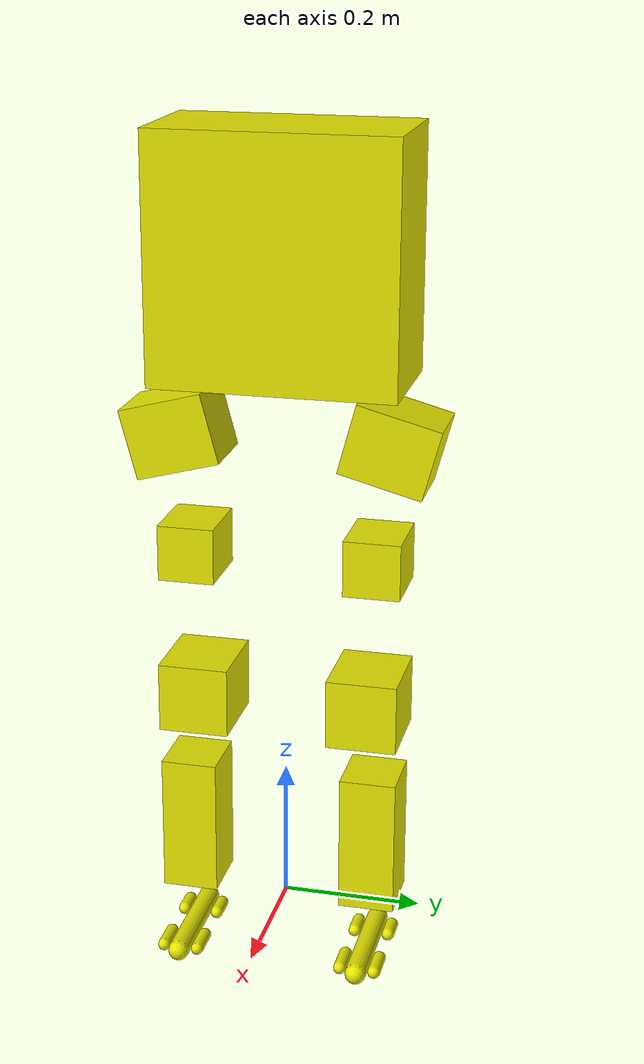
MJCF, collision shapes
<mujoco model="bipedal">
  <compiler angle="degree" meshdir="assets/"/>

  <default>
    <default class="bipedal_visual">
      <geom contype="0" conaffinity="0" group="2" density="0"/>
    </default>
    <default class="bipedal_collision">
      <geom group="3" rgba="0.9 0.9 0 1"/>
    </default>
  </default>

  <!--   Fusion outputs meshes with mm units by default, but must be converted to m in MuJoCo, hence
  the scaling   -->
  <asset>
    <mesh name="link0_torso" file="link0_torso.stl" scale="0.001 0.001 0.001" />
    <mesh name="left_hip_pitch_link_v2" file="left_hip_pitch_link_v2.stl" scale="0.001 0.001 0.001" />
    <mesh name="left_hip_roll_link" file="left_hip_roll_link.stl" scale="0.001 0.001 0.001" />
    <mesh name="left_hip_yaw_link" file="left_hip_yaw_link.stl" scale="0.001 0.001 0.001" />
    <mesh name="left_knee_link" file="left_knee_link.stl" scale="0.001 0.001 0.001" />
    <mesh name="left_ankle_roll_link" file="left_ankle_roll_link.stl" scale="0.001 0.001 0.001" />
    <mesh name="left_ankle_pitch_link" file="left_ankle_pitch_link.stl" scale="0.001 0.001 0.001" />
    <mesh name="right_hip_pitch_link_v2" file="right_hip_pitch_link_v2.stl" scale="0.001 0.001 0.001" />
    <mesh name="right_hip_roll_link" file="right_hip_roll_link.stl" scale="0.001 0.001 0.001" />
    <mesh name="right_hip_yaw_link" file="right_hip_yaw_link.stl" scale="0.001 0.001 0.001" />
    <mesh name="right_knee_link" file="right_knee_link.stl" scale="0.001 0.001 0.001" />
    <mesh name="right_ankle_roll_link" file="right_ankle_roll_link.stl" scale="0.001 0.001 0.001" />
    <mesh name="right_ankle_pitch_link" file="right_ankle_pitch_link.stl" scale="0.001 0.001 0.001" />
  </asset>

  <worldbody>
    <body name="link0_torso" pos="0 0 0.80" euler="0 0 0">
      <inertial pos="0.022E-3 0.011E-3 -9.359E-3" mass="5.721" fullinertia="1.338E-1 1.019E-1 6.278E-2 -7542.256E-9 8599.288E-9 8566.243E-9"/>
      <freejoint name="floating_base_joint"/>
      <geom type="mesh" class="bipedal_visual" mesh="link0_torso" />
      <geom name="link0_torso_collision_1" class="bipedal_collision" size="0.09 0.170 0.170" pos="0 0 0.15" type="box" />
      <site name="imu" type = "box" pos="0.0 0 0.0" euler="0 0 0" size="0.01 0.01 0.01" rgba="1 0 0 1"/>
      <body name="left_hip_pitch_link" pos="0 89.761E-3 -81.437E-3" euler="-15 0 0">
        <inertial pos="3.703E-3 49.142E-3 -49.676E-3" mass="1.953" fullinertia="4.511E-3 4.159E-3 3.315E-3 -86060.731E-9 1.258E-4 1.110E-3" />
        <joint name="left_hip_pitch_joint" axis="0 1 0" pos="0 0 0" range="-60 60"/>
        <geom type="mesh" class="bipedal_visual" mesh="left_hip_pitch_link_v2" />
        <geom name="left_hip_pitch_link_collision" class="bipedal_collision" size="0.05 0.06 0.05" pos="0 0.065 0" type="box" />
        <body name="left_hip_roll_link" pos="0 61.114E-3 -66.874E-3" euler="15 0 0">
          <inertial pos="0.016E-3 -0.136E-3 -73.241E-3" mass="1.2918" fullinertia="2.359E-3 3.153E-3 1.975E-3 -927.06E-9 -3429.47E-9 -927.06E-9" />
          <joint name="left_hip_roll_joint" axis="1 0 0" pos="0 0 0" range="-45 60"/>
          <geom type="mesh" class="bipedal_visual" mesh="left_hip_roll_link" />
          <geom name="left_hip_roll_link_collision_1" class="bipedal_collision" size="0.05 0.04 0.04" pos="0 0 -0.105" type="box"/>
          <body name="left_hip_yaw_link" pos="0 0 -120.5E-3" euler="0 0 0">
            <inertial pos="-0.314E-3 -13.334E-3 -166.036E-3" mass="1.983" fullinertia="1.165E-2 1.208E-2 2.085E-3 26778.277E-9 -32964.406E-9 -9.808E-4" />
            <joint name="left_hip_yaw_joint" axis="0 0 1" pos="0 0 0" range="-45 45"/>
            <geom type="mesh" class="bipedal_visual" mesh="left_hip_yaw_link" />
            <geom name="left_hip_yaw_link_collision_1" class="bipedal_collision" size="0.06 0.05 0.05" pos="0 -0.01 -0.2" type="box"/>
            <body name="left_knee_link" pos="0 0 -203.5E-3" euler="0 0 0">
              <inertial pos="9.7E-3 3.585E-3 -164.623E-3" mass="1.894" fullinertia="1.720E-2 1.702E-2 1.510E-3 31715.102E-9 8.973E-4 -8.846E-4" />
              <joint name="left_knee_pitch_joint" axis="0 1 0" pos="0 0 0" range="-10 120"/>
              <geom type="mesh" class="bipedal_visual" mesh="left_knee_link" />
              <geom name="left_knee_link_collision_1" class="bipedal_collision" size="0.045 0.04 0.1" pos="0.01 0 -0.2" type="box" />
              <body name="left_ankle_pitch_link" pos="0 0 -335E-3" euler="0 0 0">
                <inertial pos="0 0 0" mass="1E-4" fullinertia="1E-10 1E-10 1E-10 0 0 0" />
                <joint name="left_ankle_pitch_joint" axis="0 1 0" pos="0 0 0" range="-30 30"/>
                <body name="left_ankle_roll_link" pos="0 0 0" euler="0 0 0">
                  <inertial pos="29.106E-3 0 -30.483E-3" mass="383.542E-3" fullinertia="1.546E-4 8.770E-4 9.434E-4 -9.97E-9 50230.908E-9 40.36E-9" />
                  <joint name="left_ankle_roll_joint" axis="1 0 0" pos="0 0 0" range="-15 15"/>
                  <site name="left_foot" pos="0.04 0 -0.049" size="0.01"/>
                  <geom type="mesh" name="Left_Foot" friction="5.0 0.1 0.1" class="bipedal_visual" mesh="left_ankle_pitch_link" />
                  <geom name="left_ankle_roll_joint_collision_1" class="bipedal_collision" type="capsule" size="0.015 0.08" pos="0.04 0 -0.034" euler="0 90 0" />
                  <geom name="left_ankle_roll_joint_collision_2" class="bipedal_collision" type="capsule" size="0.009 0.02" pos="0.09 0.025 -0.034" euler="0 90 0" />
                  <geom name="left_ankle_roll_joint_collision_3" class="bipedal_collision" type="capsule" size="0.009 0.02" pos="0.09 -0.025 -0.034" euler="0 90 0" />
                  <geom name="left_ankle_roll_joint_collision_4" class="bipedal_collision" type="capsule" size="0.009 0.015" pos="-0.01 0.025 -0.034" euler="0 90 0" />
                  <geom name="left_ankle_roll_joint_collision_5" class="bipedal_collision" type="capsule" size="0.009 0.015" pos="-0.01 -0.025 -0.034" euler="0 90 0" />
                </body>
              </body>
            </body>
          </body>
        </body>
      </body>
      <body name="right_hip_pitch_link" pos="0 -89.761E-3 -81.437E-3" euler="15 0 0">
        <inertial pos="3.822E-3 -49.04E-3 -49.628E-3" mass="1.953" fullinertia="4.535E-3 4.166E-3 3.33E-3 89505.93E-9 1.268E-9 -1.126E-3" />
        <joint name="right_hip_pitch_joint" axis="0 1 0" pos="0 0 0" range="-60 60"/>
        <geom type="mesh" class="bipedal_visual" mesh="right_hip_pitch_link_v2" />
        <geom name="right_hip_pitch_link_collision_1" class="bipedal_collision" size="0.05 0.06 0.05" pos="0 -0.065 0" type="box"/>
        <body name="right_hip_roll_link" pos="0 -61.114E-3 -66.874E-3" euler="-15 0 0">
          <inertial pos="0.016E-3 -0.136E-3 -73.241E-3" mass="1.2918" fullinertia="2.359E-3 3.153E-3 1.975E-3 -927.06E-9 -3429.47E-9 -927.06E-9" />
          <joint name="right_hip_roll_joint" axis="1 0 0" pos="0 0 0" ref="0" range="-60 35"/>
          <geom type="mesh" class="bipedal_visual" mesh="right_hip_roll_link" />
          <geom name="right_hip_roll_link_collision_1" class="bipedal_collision" size="0.05 0.04 0.04" pos="0 0 -0.105" type="box"/>
          <body name="right_hip_yaw_link" pos="0 0 -120.5E-3" euler="0 0 0">
            <inertial pos="-0.029E-3 13.844E-3 -165.473E-3" mass="1.983" fullinertia="1.164E-2 1.208E-2 2.009E-3 2389.96E-9 -1032.992E-9 9.596E-4" />
            <joint name="right_hip_yaw_joint" axis="0 0 1" pos="0 0 0" range="-45 45"/>
            <geom type="mesh" class="bipedal_visual" mesh="right_hip_yaw_link" />
            <geom name="right_hip_yaw_link_collision_1" class="bipedal_collision" size="0.06 0.05 0.05" pos="0 0.01 -0.2" type="box"/>
            <body name="right_knee_link" pos="0 0 -203.5E-3" euler="0 0 0">
              <inertial pos="9.336E-3 -3.761E-3 -163.038E-3" mass="1.879" fullinertia="1.653E-2 1.633E-2 1.480E-3 -35348.501E-9 7.738E-4 8.795E-4" />
              <joint name="right_knee_pitch_joint" axis="0 1 0" pos="0 0 0" range="-10 120"/>
              <geom type="mesh" class="bipedal_visual" mesh="right_knee_link" />
              <geom name="right_knee_link_collision_1" class="bipedal_collision" size="0.045 0.04 0.1" pos="0.01 0 -0.2" type="box"/>
              <body name="right_ankle_pitch_link" pos="0 0 -335E-3" euler="0 0 0">
                <inertial pos="0 0 0" mass="1E-4" fullinertia="1E-10 1E-10 1E-10 0 0 0" />
                <joint name="right_ankle_pitch_joint" axis="0 1 0" pos="0 0 0" range="-30 30"/>
                <body name="right_ankle_roll_link" pos="0 0 0" euler="0 0 0">
                  <inertial pos="29.106E-3 0 -30.483E-3" mass="383.542E-3" fullinertia="1.546E-4 8.770E-4 9.434E-4 -9.97E-9 50230.908E-9 40.36E-9" />
                  <joint name="right_ankle_roll_joint" axis="1 0 0" pos="0 0 0" range="-15 15"/>
                  <site name="right_foot" pos="0.04 0 -0.049" size="0.01"/>
                  <geom type="mesh" name="Right_Foot" friction="5.0 0.1 0.1" class="bipedal_visual" mesh="right_ankle_pitch_link" />
                  <geom name="right_ankle_roll_joint_collision_1" class="bipedal_collision" type="capsule" size="0.015 0.08" pos="0.04 0 -0.034" euler="0 90 0" />
                  <geom name="right_ankle_roll_joint_collision_2" class="bipedal_collision" type="capsule" size="0.009 0.02" pos="0.09 0.025 -0.034" euler="0 90 0" />
                  <geom name="right_ankle_roll_joint_collision_3" class="bipedal_collision" type="capsule" size="0.009 0.02" pos="0.09 -0.025 -0.034" euler="0 90 0" />
                  <geom name="right_ankle_roll_joint_collision_4" class="bipedal_collision" type="capsule" size="0.009 0.015" pos="-0.01 0.025 -0.034" euler="0 90 0" />
                  <geom name="right_ankle_roll_joint_collision_5" class="bipedal_collision" type="capsule" size="0.009 0.015" pos="-0.01 -0.025 -0.034" euler="0 90 0" />
                </body>
              </body>
            </body>
          </body>
        </body>
      </body>
    </body>
  </worldbody>
  <sensor>
    <gyro name="imu_ang_vel" site="imu"/>
    <velocimeter name="imu_lin_vel" site="imu"/>
    <accelerometer name="imu_lin_acc" site="imu"/>
    <framezaxis name="imu_upvector" objtype="body" objname="world" reftype="site" refname="imu"/>
    <subtreeangmom name="root_angmom" body="link0_torso"/>
  </sensor>
</mujoco>
